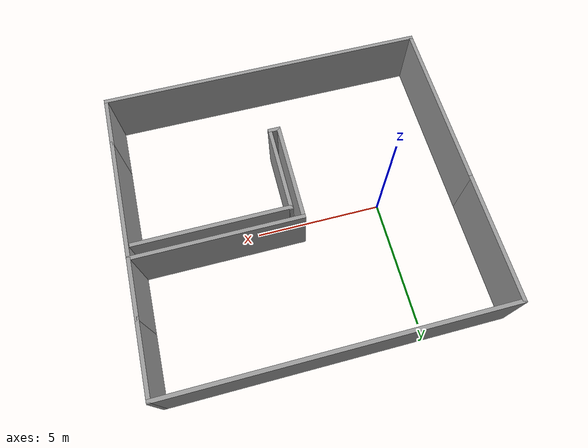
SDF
<?xml version='1.0'?>
<sdf version='1.7'>
  <model name='World_V5.world'>
    <pose>3.28305 -0.316339 0 0 -0 0</pose>
    <link name='Wall_23'>
      <collision name='Wall_23_Collision'>
        <geometry>
          <box>
            <size>2 0.15 2.5</size>
          </box>
        </geometry>
        <pose>0 0 1.25 0 -0 0</pose>
      </collision>
      <visual name='Wall_23_Visual'>
        <pose>0 0 1.25 0 -0 0</pose>
        <geometry>
          <box>
            <size>2 0.15 2.5</size>
          </box>
        </geometry>
        <material>
          <script>
            <uri>file://media/materials/scripts/gazebo.material</uri>
            <name>Gazebo/Grey</name>
          </script>
          <ambient>1 1 1 1</ambient>
        </material>
        <meta>
          <layer>0</layer>
        </meta>
      </visual>
      <pose>6.425 -4.775 0 0 -0 1.5708</pose>
    </link>
    <link name='Wall_24'>
      <collision name='Wall_24_Collision'>
        <geometry>
          <box>
            <size>7.14925 0.15 2.5</size>
          </box>
        </geometry>
        <pose>0 0 1.25 0 -0 0</pose>
      </collision>
      <visual name='Wall_24_Visual'>
        <pose>0 0 1.25 0 -0 0</pose>
        <geometry>
          <box>
            <size>7.14925 0.15 2.5</size>
          </box>
        </geometry>
        <material>
          <script>
            <uri>file://media/materials/scripts/gazebo.material</uri>
            <name>Gazebo/Grey</name>
          </script>
          <ambient>1 1 1 1</ambient>
        </material>
        <meta>
          <layer>0</layer>
        </meta>
      </visual>
      <pose>6.425 -0.350377 0 0 -0 1.5708</pose>
    </link>
    <link name='Wall_25'>
      <collision name='Wall_25_Collision'>
        <geometry>
          <box>
            <size>2.85075 0.15 2.5</size>
          </box>
        </geometry>
        <pose>0 0 1.25 0 -0 0</pose>
      </collision>
      <visual name='Wall_25_Visual'>
        <pose>0 0 1.25 0 -0 0</pose>
        <geometry>
          <box>
            <size>2.85075 0.15 2.5</size>
          </box>
        </geometry>
        <material>
          <script>
            <uri>file://media/materials/scripts/gazebo.material</uri>
            <name>Gazebo/Grey</name>
          </script>
          <ambient>1 1 1 1</ambient>
        </material>
        <meta>
          <layer>0</layer>
        </meta>
      </visual>
      <pose>6.425 4.49962 0 0 -0 1.5708</pose>
    </link>
    <link name='Wall_26'>
      <collision name='Wall_26_Collision'>
        <geometry>
          <box>
            <size>13 0.15 2.5</size>
          </box>
        </geometry>
        <pose>0 0 1.25 0 -0 0</pose>
      </collision>
      <visual name='Wall_26_Visual'>
        <pose>0 0 1.25 0 -0 0</pose>
        <geometry>
          <box>
            <size>13 0.15 2.5</size>
          </box>
        </geometry>
        <material>
          <script>
            <uri>file://media/materials/scripts/gazebo.material</uri>
            <name>Gazebo/Grey</name>
          </script>
          <ambient>1 1 1 1</ambient>
        </material>
        <meta>
          <layer>0</layer>
        </meta>
      </visual>
      <pose>0 5.85 0 0 -0 3.14159</pose>
    </link>
    <link name='Wall_27'>
      <collision name='Wall_27_Collision'>
        <geometry>
          <box>
            <size>5 0.15 2.5</size>
          </box>
        </geometry>
        <pose>0 0 1.25 0 -0 0</pose>
      </collision>
      <visual name='Wall_27_Visual'>
        <pose>0 0 1.25 0 -0 0</pose>
        <geometry>
          <box>
            <size>5 0.15 2.5</size>
          </box>
        </geometry>
        <material>
          <script>
            <uri>file://media/materials/scripts/gazebo.material</uri>
            <name>Gazebo/Grey</name>
          </script>
          <ambient>1 1 1 1</ambient>
        </material>
        <meta>
          <layer>0</layer>
        </meta>
      </visual>
      <pose>-6.425 3.425 0 0 -0 -1.5708</pose>
    </link>
    <link name='Wall_28'>
      <collision name='Wall_28_Collision'>
        <geometry>
          <box>
            <size>7 0.15 2.5</size>
          </box>
        </geometry>
        <pose>0 0 1.25 0 -0 0</pose>
      </collision>
      <visual name='Wall_28_Visual'>
        <pose>0 0 1.25 0 -0 0</pose>
        <geometry>
          <box>
            <size>7 0.15 2.5</size>
          </box>
        </geometry>
        <material>
          <script>
            <uri>file://media/materials/scripts/gazebo.material</uri>
            <name>Gazebo/Grey</name>
          </script>
          <ambient>1 1 1 1</ambient>
        </material>
        <meta>
          <layer>0</layer>
        </meta>
      </visual>
      <pose>-6.425 -2.425 0 0 -0 -1.5708</pose>
    </link>
    <link name='Wall_29'>
      <collision name='Wall_29_Collision'>
        <geometry>
          <box>
            <size>13 0.15 2.5</size>
          </box>
        </geometry>
        <pose>0 0 1.25 0 -0 0</pose>
      </collision>
      <visual name='Wall_29_Visual'>
        <pose>0 0 1.25 0 -0 0</pose>
        <geometry>
          <box>
            <size>13 0.15 2.5</size>
          </box>
        </geometry>
        <material>
          <script>
            <uri>file://media/materials/scripts/gazebo.material</uri>
            <name>Gazebo/Grey</name>
          </script>
          <ambient>1 1 1 1</ambient>
        </material>
        <meta>
          <layer>0</layer>
        </meta>
      </visual>
      <pose>0 -5.85 0 0 -0 0</pose>
    </link>
    <link name='Wall_38'>
      <collision name='Wall_38_Collision'>
        <geometry>
          <box>
            <size>6.5 0.15 2.5</size>
          </box>
        </geometry>
        <pose>0 0 1.25 0 -0 0</pose>
      </collision>
      <visual name='Wall_38_Visual'>
        <pose>0 0 1.25 0 -0 0</pose>
        <geometry>
          <box>
            <size>6.5 0.15 2.5</size>
          </box>
        </geometry>
        <material>
          <script>
            <uri>file://media/materials/scripts/gazebo.material</uri>
            <name>Gazebo/Grey</name>
          </script>
          <ambient>1 1 1 1</ambient>
        </material>
        <meta>
          <layer>0</layer>
        </meta>
      </visual>
      <pose>3.22886 0.946039 0 0 -0 3.14159</pose>
    </link>
    <link name='Wall_39'>
      <collision name='Wall_39_Collision'>
        <geometry>
          <box>
            <size>3.96283 0.15 2.5</size>
          </box>
        </geometry>
        <pose>0 0 1.25 0 -0 0</pose>
      </collision>
      <visual name='Wall_39_Visual'>
        <pose>0 0 1.25 0 -0 0</pose>
        <geometry>
          <box>
            <size>3.96283 0.15 2.5</size>
          </box>
        </geometry>
        <material>
          <script>
            <uri>file://media/materials/scripts/gazebo.material</uri>
            <name>Gazebo/Grey</name>
          </script>
          <ambient>1 1 1 1</ambient>
        </material>
        <meta>
          <layer>0</layer>
        </meta>
      </visual>
      <pose>0.053858 -0.975896 0 0 -0 -1.5708</pose>
    </link>
    <link name='Wall_40'>
      <collision name='Wall_40_Collision'>
        <geometry>
          <box>
            <size>0.5 0.15 2.5</size>
          </box>
        </geometry>
        <pose>0 0 1.25 0 -0 0</pose>
      </collision>
      <visual name='Wall_40_Visual'>
        <pose>0 0 1.25 0 -0 0</pose>
        <geometry>
          <box>
            <size>0.5 0.15 2.5</size>
          </box>
        </geometry>
        <material>
          <script>
            <uri>file://media/materials/scripts/gazebo.material</uri>
            <name>Gazebo/Grey</name>
          </script>
          <ambient>1 1 1 1</ambient>
        </material>
        <meta>
          <layer>0</layer>
        </meta>
      </visual>
      <pose>0.228858 -2.88231 0 0 -0 0</pose>
    </link>
    <link name='Wall_41'>
      <collision name='Wall_41_Collision'>
        <geometry>
          <box>
            <size>3.53447 0.15 2.5</size>
          </box>
        </geometry>
        <pose>0 0 1.25 0 -0 0</pose>
      </collision>
      <visual name='Wall_41_Visual'>
        <pose>0 0 1.25 0 -0 0</pose>
        <geometry>
          <box>
            <size>3.53447 0.15 2.5</size>
          </box>
        </geometry>
        <material>
          <script>
            <uri>file://media/materials/scripts/gazebo.material</uri>
            <name>Gazebo/Grey</name>
          </script>
          <ambient>1 1 1 1</ambient>
        </material>
        <meta>
          <layer>0</layer>
        </meta>
      </visual>
      <pose>0.403858 -1.19008 0 0 -0 1.5708</pose>
    </link>
    <link name='Wall_42'>
      <collision name='Wall_42_Collision'>
        <geometry>
          <box>
            <size>6 0.15 2.5</size>
          </box>
        </geometry>
        <pose>0 0 1.25 0 -0 0</pose>
      </collision>
      <visual name='Wall_42_Visual'>
        <pose>0 0 1.25 0 -0 0</pose>
        <geometry>
          <box>
            <size>6 0.15 2.5</size>
          </box>
        </geometry>
        <material>
          <script>
            <uri>file://media/materials/scripts/gazebo.material</uri>
            <name>Gazebo/Grey</name>
          </script>
          <ambient>1 1 1 1</ambient>
        </material>
        <meta>
          <layer>0</layer>
        </meta>
      </visual>
      <pose>3.32886 0.470943 0 0 -0 0</pose>
    </link>
    <static>1</static>
  </model>
</sdf>
